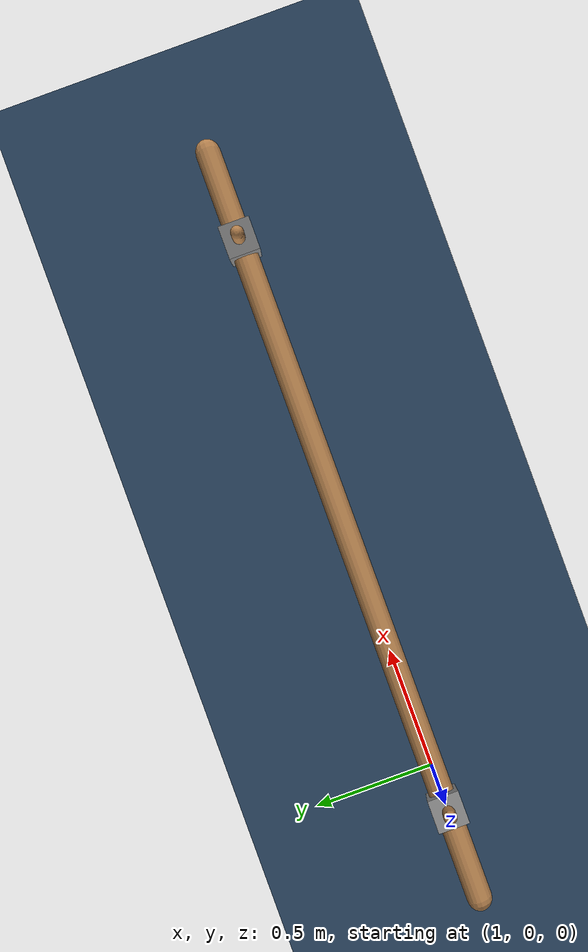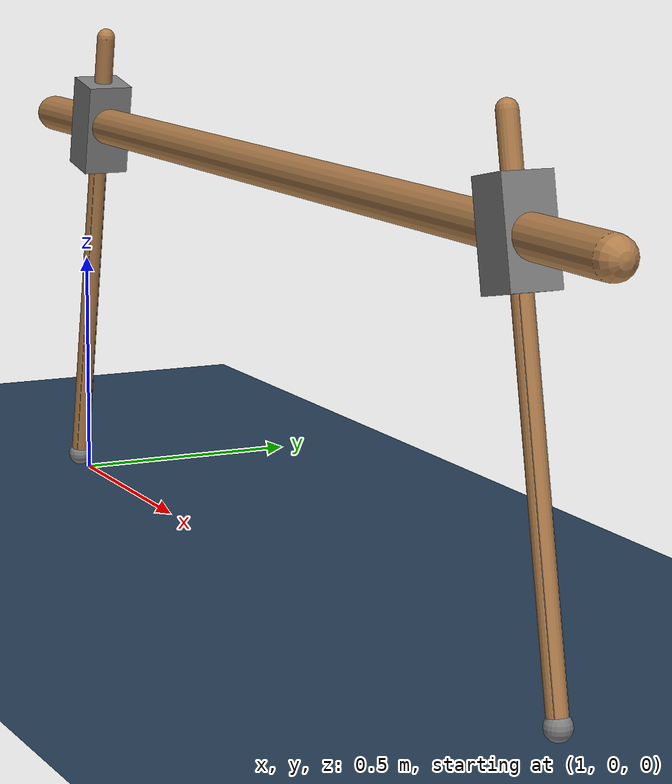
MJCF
<mujoco model="cheetah">
  <include file="./common/skybox.xml"/>
  <include file="./common/visual.xml"/>
  <include file="./common/materials.xml"/>

  <default>
    <motor ctrllimited="false" ctrlrange="-100 100" gear="10"/>
    <tendon stiffness="100" damping="1" width="0.02"/>
    <default class="free">
      <joint limited="false" stiffness="0" armature="0"/>
    </default>
  </default>

  <option timestep="0.001" integrator="RK4" solver="Newton" gravity="0 0 -9.81" viscosity="0.0" collision="all"/>

  <size njmax="300" nconmax="50" nstack="1200"/>

  <worldbody>
    <geom name="ground" type="plane" conaffinity="1" pos="4 0 0" size="20 .8 .5" condim="4" friction="1 0.005 0.0001" material="grid"/>
    <body name="torso" pos="0.8 0 0.82">
      <light name="light" pos="0 0 2"/>
      <geom name="torso" type="capsule" fromto="0 0 0 2.5 0 0" size="0.04" mass="2" material="self"/>
      <joint name="rootx" type="slide" class="free" axis="1 0 0"/>
      <joint name="rootz" type="slide" class="free" axis="0 0 1"/>
      <joint name="rooty" type="hinge" class="free" axis="0 1 0"/>
      <body name="rleg1" pos=".3 0 0">
        <inertial pos="0 0 0" mass="1" diaginertia="1 2 1"/>
        <geom name="rleg1" type="box" pos="0 0 0" size="0.05 0.05 0.1" mass="1" zaxis="0.2 0 1"/>
        <joint name="rj1" type="hinge" range="-80 80" limited="true" stiffness="40" damping="2" axis="0 1 0"/>
        <site name="rleg1" pos="0 0 0" size="0.02"/>
        <body name="rleg2" pos="0 0 0">
          <geom name="rleg2" type="capsule" fromto="0.04 0 0.2 -0.16 0 -0.8" size="0.02" mass="0.01" friction="1 0.005 0.0001" material="self"/>
          <joint name="rj2" type="slide" axis="0.2 0 1" range="-10 10" stiffness="0" damping="5"/>
          <site name="rleg2" pos="-0.16 0 -0.8" size="0.026"/>
        </body>
      </body>
      <body name="fleg1" pos="2.2 0 0">
        <inertial pos="0 0 0" mass="1" diaginertia="1 2 1"/>
        <geom name="fleg1" type="box" pos="0 0 0" size="0.05 0.05 0.1" mass="1"  zaxis="-0.2 0 1"/>
        <joint name="fj1" type="hinge" range="-80 80" limited="true" stiffness="40" damping="2" axis="0 1 0"/>
        <site name="fleg1" pos="0 0 0" size="0.02"/>
        <body name="fleg2" pos="0 0 0">
          <geom name="fleg2" type="capsule" fromto="-0.04 0 0.2 0.16 0 -0.8" size="0.02" mass="0.01" friction="1 0.005 0.0001" material="self"/>
          <joint name="fj2" type="slide" axis="-0.2 0 1" range="-10 10" stiffness="0" damping="5"/>
          <site name="fleg2" pos="0.16 0 -0.8" size="0.026"/>
        </body>
      </body>
    </body>
  </worldbody>

  <tendon>
    <spatial name="Sr">
        <site site="rleg1"/>
        <site site="rleg2"/>
    </spatial>
    <spatial name="Sf">
        <site site="fleg1"/>
        <site site="fleg2"/>
    </spatial>
  </tendon>

  <actuator>
    <motor joint="rj1"/>
    <motor joint="fj1"/>
    <motor tendon="Sr"/>
    <motor tendon="Sf"/>
  </actuator>

  <sensor>
    <subtreelinvel name="torso_subtreelinvel" body="torso"/>
  </sensor>
</mujoco>

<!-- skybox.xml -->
<mujoco>
    <asset>
        <texture name="skybox" type="skybox" builtin="gradient" rgb1=".4 .6 .8" rgb2="0 0 0" width="800" height="800" mark="random" markrgb="1 1 1" />
    </asset>
</mujoco>

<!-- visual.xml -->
<mujoco>
    <visual>
        <headlight ambient=".4 .4 .4" diffuse=".8 .8 .8" specular="0.1 0.1 0.1" />
        <map znear=".01" />
        <quality shadowsize="2048" />
    </visual>
</mujoco>

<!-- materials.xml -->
<!--
Common textures, colors and materials to be used throughout this suite. Some
materials such as xxx_highlight are activated on occurence of certain events,
for example receiving a positive reward.
-->
<mujoco>
    <asset>
        <texture name="grid" type="2d" builtin="checker" rgb1=".1 .2 .3" rgb2=".2 .3 .4" width="300" height="300" mark="edge" markrgb=".2 .3 .4" />
        <material name="grid" texture="grid" texrepeat="1 1" texuniform="true" reflectance=".2" />
        <material name="self" rgba=".7 .5 .3 1" />
        <material name="self_default" rgba=".7 .5 .3 1" />
        <material name="self_highlight" rgba="0 .5 .3 1" />
        <material name="effector" rgba=".7 .4 .2 1" />
        <material name="effector_default" rgba=".7 .4 .2 1" />
        <material name="effector_highlight" rgba="0 .5 .3 1" />
        <material name="decoration" rgba=".3 .5 .7 1" />
        <material name="eye" rgba="0 .2 1 1" />
        <material name="target" rgba=".6 .3 .3 1" />
        <material name="target_default" rgba=".6 .3 .3 1" />
        <material name="target_highlight" rgba=".6 .3 .3 .4" />
    </asset>
</mujoco>
